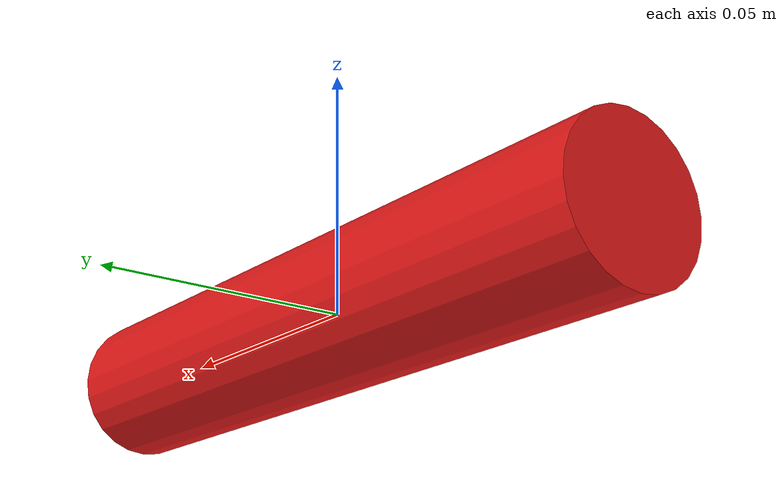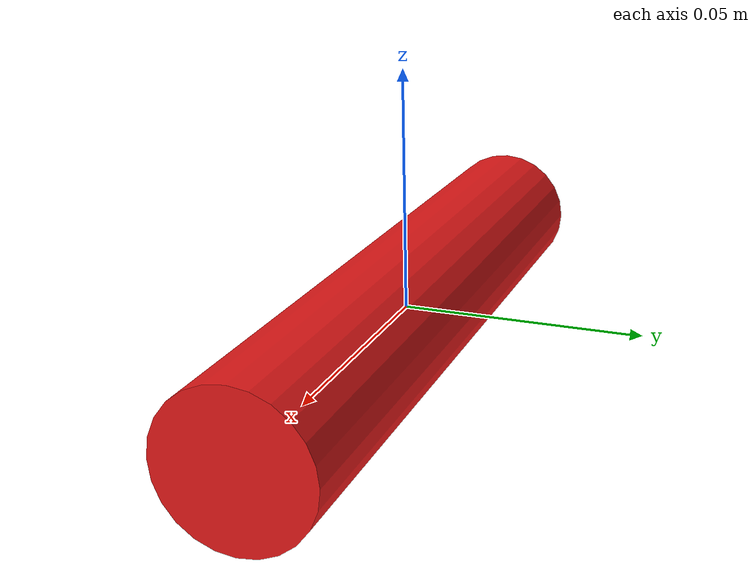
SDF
<?xml version="1.0" ?>
<sdf version="1.11">
  <model name="torpedo">
    <static>false</static>
    <link name="link">
      <inertial>
        <mass>0.1</mass>
        <inertia>
          <ixx>0.000011</ixx><ixy>0</ixy><ixz>0</ixz>
          <iyy>0.00019</iyy><iyz>0</iyz>
          <izz>0.00019</izz>
        </inertia>
      </inertial>

      <visual name="torpedo_visual">
        <pose>0 0 0 0 1.5708 0</pose>
        <geometry>
          <cylinder>
            <radius>0.015</radius>
            <length>0.15</length>
          </cylinder>
        </geometry>
        <material>
          <ambient>0.9 0.1 0.1 1</ambient>
          <diffuse>0.9 0.1 0.1 1</diffuse>
        </material>
      </visual>

      <collision name="torpedo_collision">
        <pose>0 0 0 0 1.5708 0</pose>
        <geometry>
          <cylinder>
            <radius>0.015</radius>
            <length>0.15</length>
          </cylinder>
        </geometry>
      </collision>
    </link>

    <plugin
        filename="gz-sim-velocity-control-system"
        name="gz::sim::systems::VelocityControl">
    </plugin>
  </model>
</sdf>
